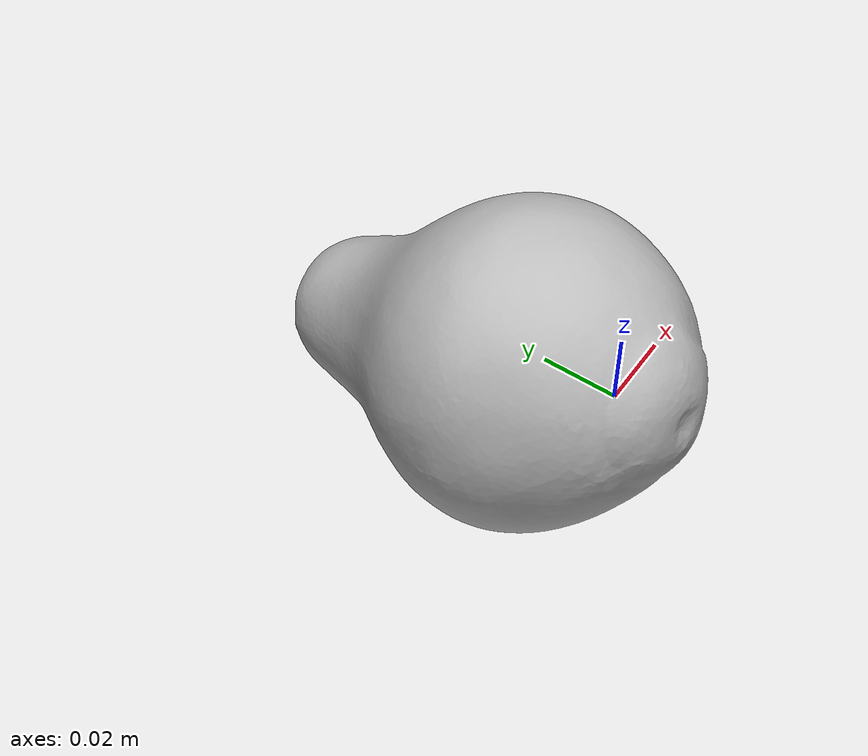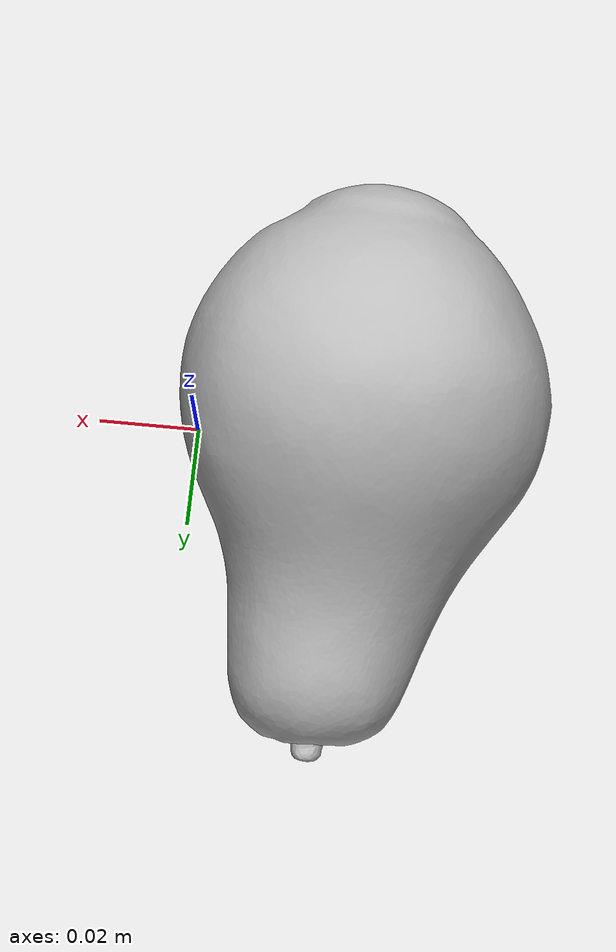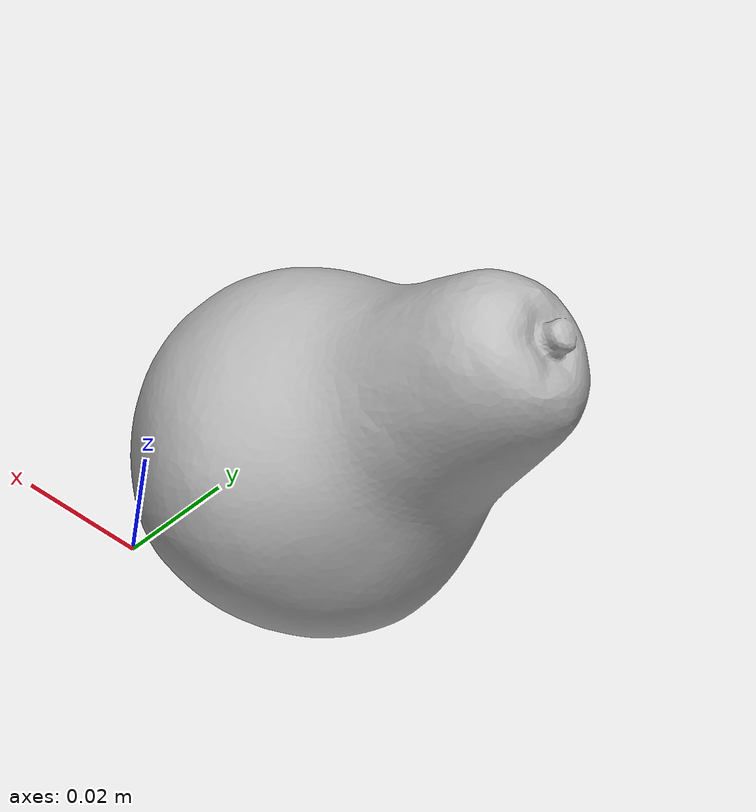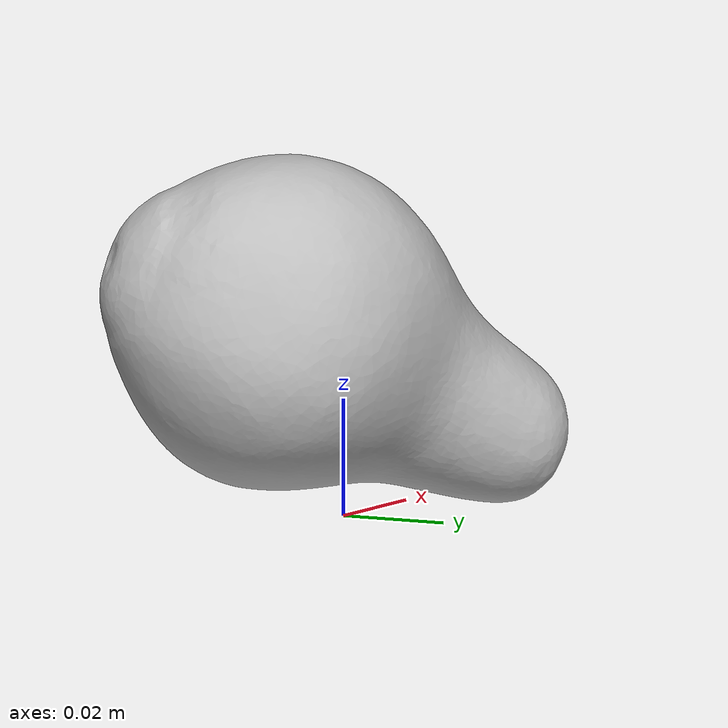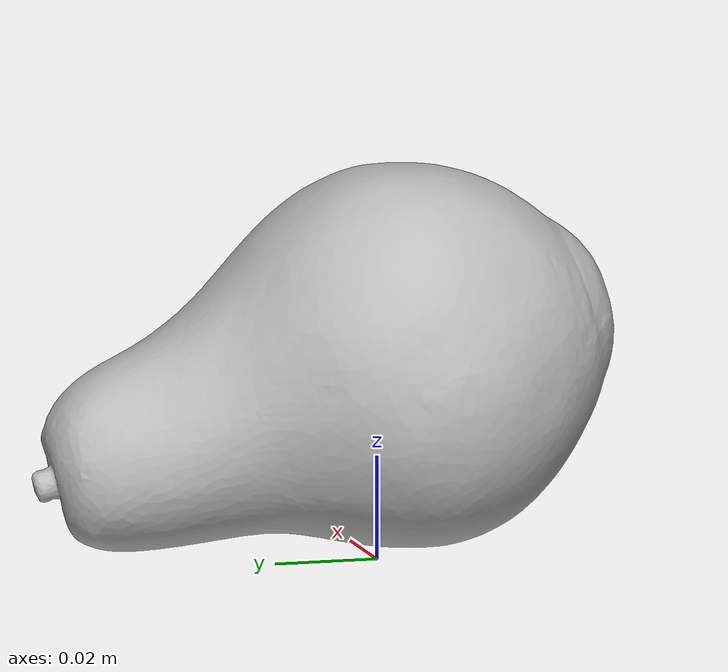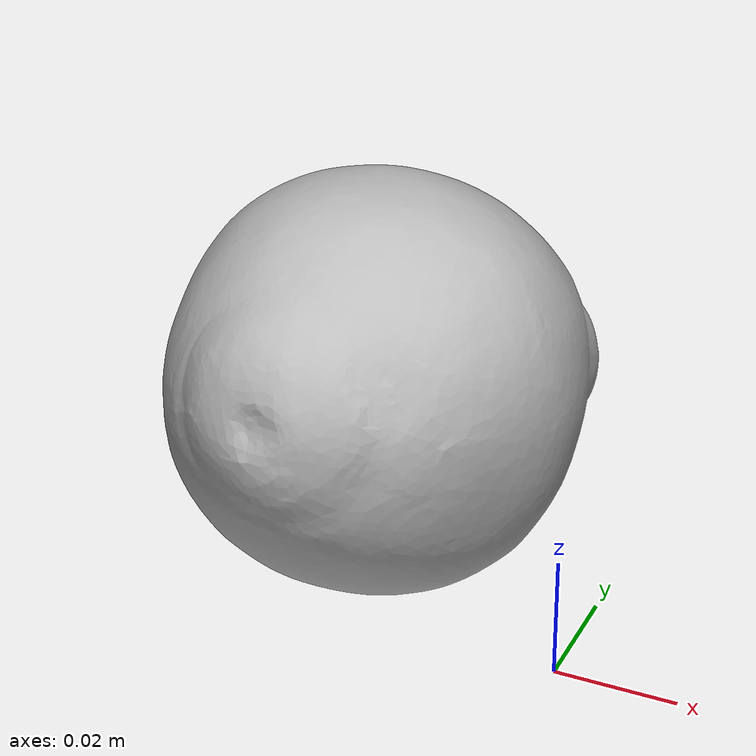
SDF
<?xml version="1.0"?>
<sdf version="1.6">
    <model name="pear">
        <pose>0 0 0.01 0 0 0</pose>
        <link name="link_00">
            <pose>0.0 0 0 0 0 0</pose>
            <visual name="visual_00">
                <geometry>
                    <mesh>
                        <uri>model://pear/textured.dae</uri>
                    </mesh>
                </geometry>
            </visual>
            <collision name="collision">
                <geometry>
                    <mesh>
                        <uri>model://pear/collision.dae</uri>
                    </mesh>
                </geometry>
                <surface>
                    <friction>
                        <ode>
                            <mu>100</mu>
                            <mu2>50</mu2>
                            <fdir1>0.0 0.0 0.0</fdir1>
                            <slip1>0.0</slip1>
                            <slip2>0.0</slip2>
                        </ode>
                    </friction>
                    <contact>
                        <ode>
                            <max_vel>0.1</max_vel>
                            <min_depth>0.001</min_depth>
                        </ode>
                    </contact>
                </surface>
                <max_contacts>3</max_contacts>
            </collision>
            <inertial>
                <pose> -0.033 0.011 0.03 0 0 0</pose>
                <inertia>
                    <ixx>1.5e-04</ixx>
                    <ixy>-0.0</ixy>
                    <ixz>-0.0</ixz>
                    <iyy>1.5e-04</iyy>
                    <iyz>0.0</iyz>
                    <izz>1.5e-04</izz>
                </inertia>
            </inertial>
        </link>
    </model>
</sdf>
